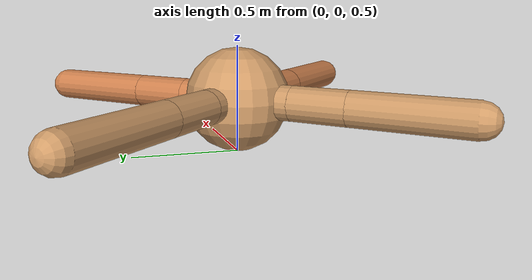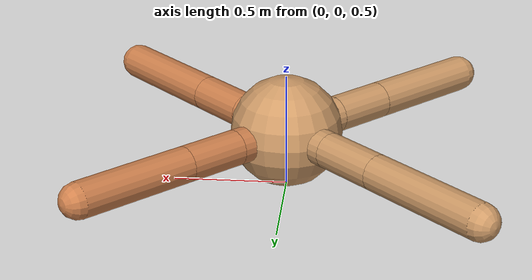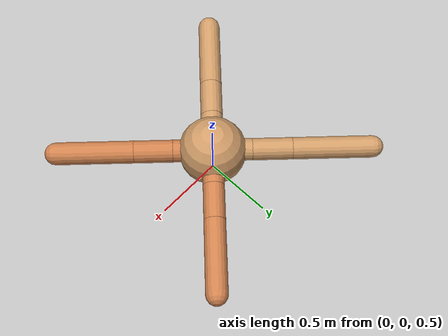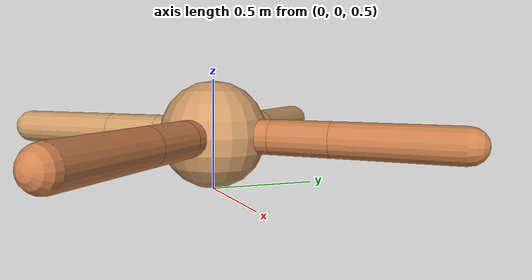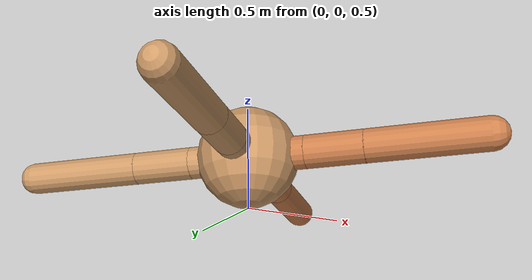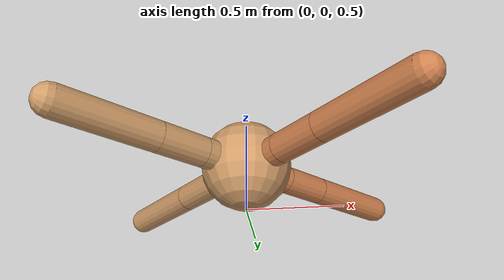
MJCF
<?xml version="1.0" ?>
<mujoco model="ant">

	<compiler angle="degree" coordinate="local" inertiafromgeom="true"/>

	<option integrator="RK4" timestep="0.01"/>

	<custom>

		<numeric data="0.0 0.0 0.55 1.0 0.0 0.0 0.0 0.0 1.0 0.0 -1.0 0.0 -1.0 0.0 1.0" name="init_qpos"/>

	</custom>

	<default>

		<joint armature="1" damping="1" limited="true"/>

		<geom conaffinity="0" condim="3" density="5.0" friction="1.5 0.1 0.1" margin="0.01" rgba="0.8 0.6 0.4 1"/>

	</default>

	<worldbody>

		<body name="torso" pos="0 0 0.75">

			<geom name="torso_geom" pos="0 0 0" size="0.24439084543213688" type="sphere"/>

			<!--joint armature="0" damping="0" limited="false" margin="0.01" name="root" pos="0 0 0" type="free"/-->

			<body name="front_left_leg" pos="0 0 0">

				<geom fromto="0 0 0 0.2 0.2 0" name="aux_1_geom" size="0.0775488977222038" type="capsule" rgba=".8 .5 .3 1"/>

				<body name="aux_1" pos="0.2 0.2 0">

					<joint axis="0 0 1" name="hip_1" pos="0.0 0.0 0.0" range="-40 40" type="hinge"/>

					<geom fromto="0 0 0 0.1853378557554232 0.1853378557554232 0" name="left_leg_geom" size="0.0775488977222038" type="capsule" rgba=".8 .5 .3 1"/>

					<body pos="0.1853378557554232 0.1853378557554232 0" name="front_left_foot">

						<joint axis="-1 1 0" name="ankle_1" pos="0.0 0.0 0.0" range="30 100" type="hinge"/>

						<geom fromto="0 0 0 0.3706757115108464 0.3706757115108464 0" name="left_ankle_geom" size="0.0775488977222038" type="capsule" rgba=".8 .5 .3 1"/>

					</body>

				</body>

			</body>

			<body name="front_right_leg" pos="0 0 0">

				<geom fromto="0 0 0 -0.2 0.2 0" name="aux_2_geom" size="0.07898301564709014" type="capsule"/>

				<body name="aux_2" pos="-0.2 0.2 0">

					<joint axis="0 0 1" name="hip_2" pos="0.0 0.0 0.0" range="-40 40" type="hinge"/>

					<geom fromto="0 0 0 -0.20255352777138086 0.20255352777138086 0" name="right_leg_geom" size="0.07898301564709014" type="capsule"/>

					<body pos="-0.20255352777138086 0.20255352777138086 0" name="front_right_foot">

						<joint axis="1 1 0" name="ankle_2" pos="0.0 0.0 0.0" range="-100 -30" type="hinge"/>

						<geom fromto="0 0 0 -0.4051070555427617 0.4051070555427617 0" name="right_ankle_geom" size="0.07898301564709014" type="capsule"/>

					</body>

				</body>

			</body>

			<body name="left_back_leg" pos="0 0 0">

				<geom fromto="0 0 0 -0.2 -0.2 0" name="aux_3_geom" size="0.08107015062978011" type="capsule"/>

				<body name="aux_3" pos="-0.2 -0.2 0">

					<joint axis="0 0 1" name="hip_3" pos="0.0 0.0 0.0" range="-40 40" type="hinge"/>

					<geom fromto="0 0 0 -0.18627045280114263 -0.18627045280114263 0" name="back_leg_geom" size="0.08107015062978011" type="capsule"/>

					<body pos="-0.18627045280114263 -0.18627045280114263 0" name="left_back_foot">

						<joint axis="-1 1 0" name="ankle_3" pos="0.0 0.0 0.0" range="-100 -30" type="hinge"/>

						<geom fromto="0 0 0 -0.37254090560228525 -0.37254090560228525 0" name="third_ankle_geom" size="0.08107015062978011" type="capsule"/>

					</body>

				</body>

			</body>

			<body name="right_back_leg" pos="0 0 0">

				<geom fromto="0 0 0 0.2 -0.2 0" name="aux_4_geom" size="0.08061808460935069" type="capsule" rgba=".8 .5 .3 1"/>

				<body name="aux_4" pos="0.2 -0.2 0">

					<joint axis="0 0 1" name="hip_4" pos="0.0 0.0 0.0" range="-40 40" type="hinge"/>

					<geom fromto="0 0 0 0.1966426737522767 -0.1966426737522767 0" name="rightback_leg_geom" size="0.08061808460935069" type="capsule" rgba=".8 .5 .3 1"/>

					<body pos="0.1966426737522767 -0.1966426737522767 0" name="right_back_foot">

						<joint axis="1 1 0" name="ankle_4" pos="0.0 0.0 0.0" range="30 100" type="hinge"/>

						<geom fromto="0 0 0 0.3932853475045534 -0.3932853475045534 0" name="fourth_ankle_geom" size="0.08061808460935069" type="capsule" rgba=".8 .5 .3 1"/>

					</body>

				</body>

			</body>

		</body>

	</worldbody>

	<actuator>

		<motor ctrllimited="true" ctrlrange="-1.0 1.0" joint="hip_4" gear="150"/>

		<motor ctrllimited="true" ctrlrange="-1.0 1.0" joint="ankle_4" gear="150"/>

		<motor ctrllimited="true" ctrlrange="-1.0 1.0" joint="hip_1" gear="150"/>

		<motor ctrllimited="true" ctrlrange="-1.0 1.0" joint="ankle_1" gear="150"/>

		<motor ctrllimited="true" ctrlrange="-1.0 1.0" joint="hip_2" gear="150"/>

		<motor ctrllimited="true" ctrlrange="-1.0 1.0" joint="ankle_2" gear="150"/>

		<motor ctrllimited="true" ctrlrange="-1.0 1.0" joint="hip_3" gear="150"/>

		<motor ctrllimited="true" ctrlrange="-1.0 1.0" joint="ankle_3" gear="150"/>

	</actuator>

</mujoco>
